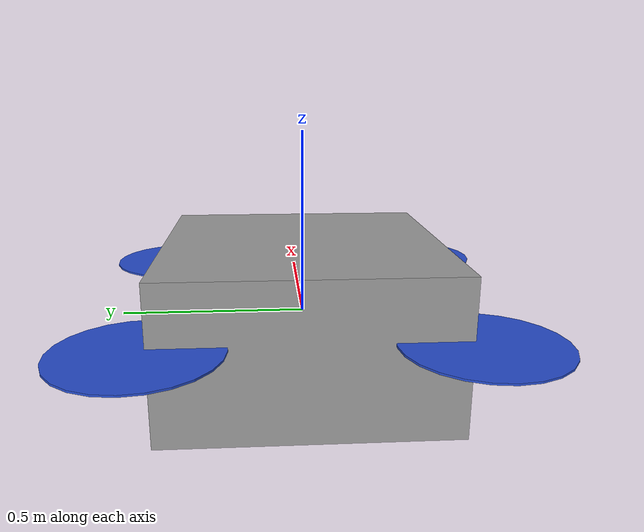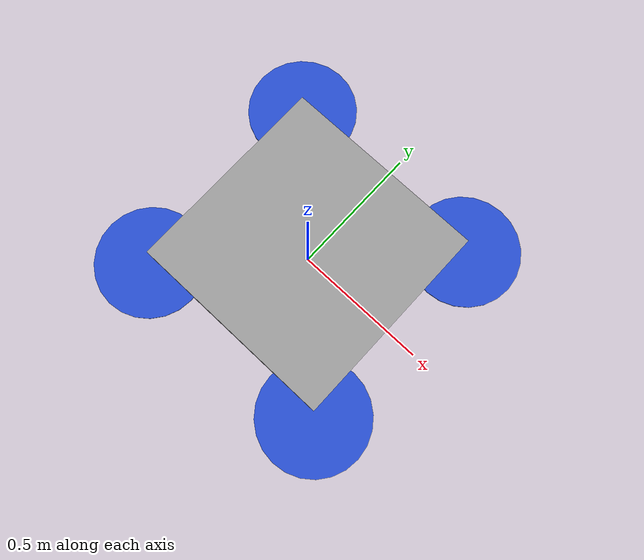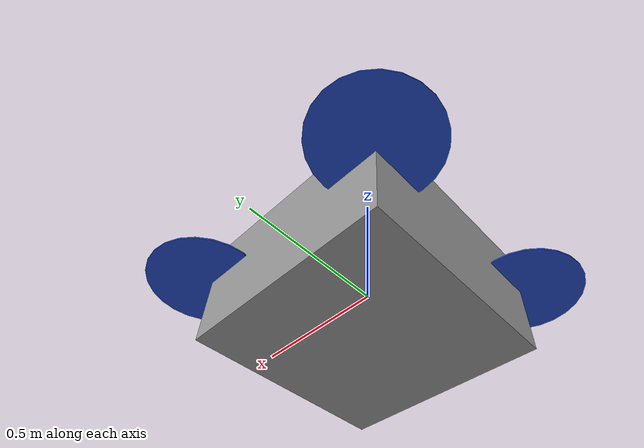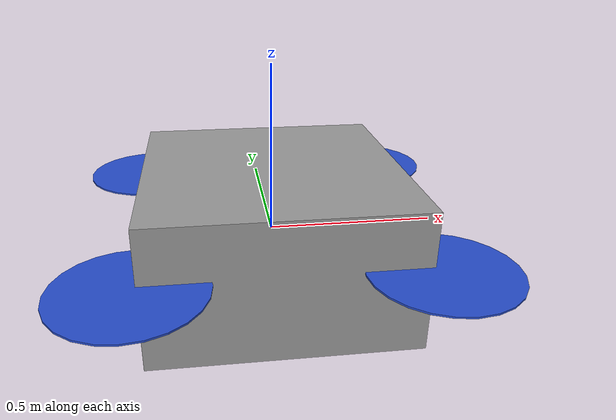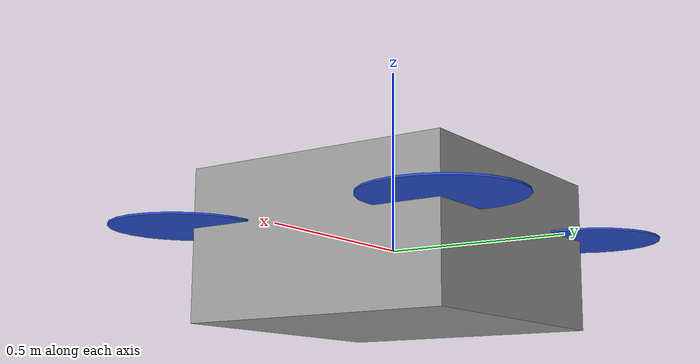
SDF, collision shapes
<?xml version="1.0" ?>

  <sdf version="1.5">
    <model name="tsduav_quad">

      <include>
        <uri>model://tsduav_quad_base</uri>
        <name>tsduav_quad_base</name>
        <pose>0 0 0.0 0 0 0</pose>
      </include>
      <include>
        <uri>model://tsduav_quad_prop</uri>
        <name>tsduav_quad_prop_0</name>
        <pose>0.389 -0.389 0.0465 0 0 0</pose>
      </include>
      <include>
        <uri>model://tsduav_quad_prop</uri>
        <name>tsduav_quad_prop_1</name>
        <pose>-0.389 -0.389 0.0465 0 0 0</pose>
      </include>
      <include>
        <uri>model://tsduav_quad_prop</uri>
        <name>tsduav_quad_prop_2</name>
        <pose>-0.389 0.389 0.0465 0 0 3.141592653589793</pose>
      </include>
      <include>
        <uri>model://tsduav_quad_prop</uri>
        <name>tsduav_quad_prop_3</name>
        <pose>0.389 0.389 0.0465 0 0 3.141592653589793</pose>
      </include>

      <joint name="tsduav_quad_prop_0_joint" type="revolute">
        <parent>tsduav_quad_base::platform_base</parent>
        <child>tsduav_quad_prop_0::prop </child>
        <axis>
          <xyz>0 0 1</xyz>
          <limit>
            <lower>-1e+16</lower>
            <upper>1e+16</upper>
          </limit>
          <dynamics>
            <damping>0.00001</damping>
          </dynamics>
          <use_parent_model_frame>1</use_parent_model_frame>
        </axis>
      </joint>

      <plugin name="tsduav_quad_prop_0_plugin" filename='librotors_gazebo_motor_model.so'>
        <robotNamespace></robotNamespace>
        <jointName>tsduav_quad_prop_0_joint </jointName>
        <linkName>tsduav_quad_prop_0::prop</linkName>
        <turningDirection>ccw</turningDirection>
        <timeConstantUp>0.0125</timeConstantUp>
        <timeConstantDown>0.025</timeConstantDown>
        <maxRotVelocity>1000</maxRotVelocity>
        <motorConstant>8.599e-05</motorConstant>
        <momentConstant>0.25</momentConstant>
        <commandSubTopic>/gazebo/command/prop_speed</commandSubTopic>
        <motorNumber>0</motorNumber>
        <rotorDragCoefficient>0.000806428</rotorDragCoefficient>
        <rollingMomentCoefficient>1e-06</rollingMomentCoefficient>
        <motorSpeedPubTopic>prop_speed/0</motorSpeedPubTopic>
        <rotorVelocitySlowdownSim>10</rotorVelocitySlowdownSim>
      </plugin>

      <joint name="tsduav_quad_prop_1_joint" type="revolute">
        <parent>tsduav_quad_base::platform_base</parent>
        <child>tsduav_quad_prop_1::prop </child>
        <axis>
          <xyz>0 0 1</xyz>
          <limit>
            <lower>-1e+16</lower>
            <upper>1e+16</upper>
          </limit>
          <dynamics>
            <damping>0.00001</damping>
          </dynamics>
          <use_parent_model_frame>1</use_parent_model_frame>
        </axis>
      </joint>

      <plugin name="tsduav_quad_prop_1_plugin" filename='librotors_gazebo_motor_model.so'>
        <robotNamespace></robotNamespace>
        <jointName>tsduav_quad_prop_1_joint </jointName>
        <linkName>tsduav_quad_prop_1::prop</linkName>
        <turningDirection>cw</turningDirection>
        <timeConstantUp>0.0125</timeConstantUp>
        <timeConstantDown>0.025</timeConstantDown>
        <maxRotVelocity>1000</maxRotVelocity>
        <motorConstant>8.599e-05</motorConstant>
        <momentConstant>0.25</momentConstant>
        <commandSubTopic>/gazebo/command/prop_speed</commandSubTopic>
        <motorNumber>1</motorNumber>
        <rotorDragCoefficient>0.000806428</rotorDragCoefficient>
        <rollingMomentCoefficient>1e-06</rollingMomentCoefficient>
        <motorSpeedPubTopic>prop_speed/1</motorSpeedPubTopic>
        <rotorVelocitySlowdownSim>10</rotorVelocitySlowdownSim>
      </plugin>

      <joint name="tsduav_quad_prop_2_joint" type="revolute">
        <parent>tsduav_quad_base::platform_base</parent>
        <child>tsduav_quad_prop_2::prop </child>
        <axis>
          <xyz>0 0 1</xyz>
          <limit>
            <lower>-1e+16</lower>
            <upper>1e+16</upper>
          </limit>
          <dynamics>
            <damping>0.00001</damping>
          </dynamics>
          <use_parent_model_frame>1</use_parent_model_frame>
        </axis>
      </joint>

      <plugin name="tsduav_quad_prop_2_plugin" filename='librotors_gazebo_motor_model.so'>
        <robotNamespace></robotNamespace>
        <jointName>tsduav_quad_prop_2_joint </jointName>
        <linkName>tsduav_quad_prop_2::prop</linkName>
        <turningDirection>ccw</turningDirection>
        <timeConstantUp>0.0125</timeConstantUp>
        <timeConstantDown>0.025</timeConstantDown>
        <maxRotVelocity>1000</maxRotVelocity>
        <motorConstant>8.599e-05</motorConstant>
        <momentConstant>0.25</momentConstant>
        <commandSubTopic>/gazebo/command/prop_speed</commandSubTopic>
        <motorNumber>2</motorNumber>
        <rotorDragCoefficient>0.000806428</rotorDragCoefficient>
        <rollingMomentCoefficient>1e-06</rollingMomentCoefficient>
        <motorSpeedPubTopic>prop_speed/2</motorSpeedPubTopic>
        <rotorVelocitySlowdownSim>10</rotorVelocitySlowdownSim>
      </plugin>

      <joint name="tsduav_quad_prop_3_joint" type="revolute">
        <parent>tsduav_quad_base::platform_base</parent>
        <child>tsduav_quad_prop_3::prop </child>
        <axis>
          <xyz>0 0 1</xyz>
          <limit>
            <lower>-1e+16</lower>
            <upper>1e+16</upper>
          </limit>
          <dynamics>
            <damping>0.00001</damping>
          </dynamics>
          <use_parent_model_frame>1</use_parent_model_frame>
        </axis>
      </joint>

      <plugin name="tsduav_quad_prop_3_plugin" filename='librotors_gazebo_motor_model.so'>
        <robotNamespace></robotNamespace>
        <jointName>tsduav_quad_prop_3_joint </jointName>
        <linkName>tsduav_quad_prop_3::prop</linkName>
        <turningDirection>cw</turningDirection>
        <timeConstantUp>0.0125</timeConstantUp>
        <timeConstantDown>0.025</timeConstantDown>
        <maxRotVelocity>1000</maxRotVelocity>
        <motorConstant>8.599e-05</motorConstant>
        <momentConstant>0.25</momentConstant>
        <commandSubTopic>/gazebo/command/prop_speed</commandSubTopic>
        <motorNumber>3</motorNumber>
        <rotorDragCoefficient>0.000806428</rotorDragCoefficient>
        <rollingMomentCoefficient>1e-06</rollingMomentCoefficient>
        <motorSpeedPubTopic>prop_speed/3</motorSpeedPubTopic>
        <rotorVelocitySlowdownSim>10</rotorVelocitySlowdownSim>
      </plugin>

    <plugin name="ArduRotorNormPlugin" filename="libArduRotorNormPlugin.so">
      <fdm_addr>127.0.0.1</fdm_addr>
      <fdm_port_in>9002</fdm_port_in>
      <fdm_port_out>9003</fdm_port_out>
      <modelXYZToAirplaneXForwardZDown>0 0 0 3.141593 0 0</modelXYZToAirplaneXForwardZDown>
      <gazeboXYZToNED>0 0 0 3.141593 0 0</gazeboXYZToNED>
      <motor_num>4</motor_num>
      <servo_num>0</servo_num>
      <motor_pub>/gazebo/command/prop_speed</motor_pub>
      <imuName>tsduav_quad_base::imu_link::imu_sensor</imuName>
      <connectionTimeoutMaxCount>5</connectionTimeoutMaxCount>
    </plugin>

    <plugin name="ArduUWBPlugin" filename="libArduUWBPlugin.so">
      <ardu_addr>127.0.0.1</ardu_addr>
      <ardu_port>5762</ardu_port>
      <modelXYZToAirplaneXForwardZDown>0 0 0 3.141593 0 0</modelXYZToAirplaneXForwardZDown>
      <gazeboXYZToNED>0 0 0 3.141593 0 0</gazeboXYZToNED>
      <beacon0>0 0 0</beacon0>
      <beacon1>3 0 3</beacon1>
      <beacon2>6 0 0</beacon2>
      <beacon3>6 6 3</beacon3>
      <beacon4>3 6 0</beacon4>
      <beacon5>0 6 3</beacon5>
    </plugin>
  </model>
</sdf>

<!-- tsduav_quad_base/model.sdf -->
<sdf version="1.5">
    <model name="tsduav_quad_platform">

      <link name="platform_base">
      <pose>0 0 0.0  0 0 0</pose>
      <inertial>
        <pose>0 0 0 0 0 0</pose>
        <mass>5.5</mass>
        <inertia>
          <ixx>0.5</ixx>
          <iyy>0.5</iyy>
          <izz>0.2</izz>
          <ixy>0</ixy>
          <ixz>0</ixz>
          <iyz>0</iyz>
        </inertia>
      </inertial>
      <collision name="platform_base_collision">
        <pose>0 0 0  0 0 0</pose>
        <geometry>
          <box>
            <size>0.750 0.750 0.406</size>
          </box>
        </geometry>
        <surface>
          <contact>
            <ode>
              <max_vel>100.0</max_vel>
              <min_depth>0.001</min_depth>
            </ode>
          </contact>
          <friction>
            <ode>
              <mu>100000.0</mu>
              <mu2>100000.0</mu2>
            </ode>
          </friction>
        </surface>
      </collision>
      <visual name="platform_base_visual">
        <geometry>
          <mesh>
            <uri>model://tsduav_quad_base/meshes/body.STL</uri>
          </mesh>
        </geometry>
        <material>
          <script>
            <name>Gazebo/Grey</name>
          </script>
        </material>
      </visual>
    </link>
    <link name='imu_link'>
    <inertial>
      <pose>0 0 0 0 0 0</pose>
      <mass>0.15</mass>
      <inertia>
        <ixx>0.00001</ixx>
        <ixy>0</ixy>
        <ixz>0</ixz>
        <iyy>0.00002</iyy>
        <iyz>0</iyz>
        <izz>0.00002</izz>
      </inertia>
    </inertial>
    <sensor name="imu_sensor" type="imu">
      <pose>0 0 0 3.141593 0 0</pose>
      <always_on>1</always_on>
      <update_rate>1000.0</update_rate>
      <topic>__default_topic__</topic>
    </sensor>
  </link>
  <joint name='imu_joint' type='revolute'>
    <child>imu_link</child>
    <parent>platform_base</parent>
    <axis>
      <xyz>0 0 1</xyz>
      <limit>
        <lower>-0.0001</lower>
        <upper>0.00001</upper>
        <effort>0</effort>
        <velocity>0</velocity>
      </limit>
      <dynamics>
        <damping>1.0</damping>
      </dynamics>
      <use_parent_model_frame>1</use_parent_model_frame>
    </axis>
    <physics>
      <ode>
        <implicit_spring_damper>1</implicit_spring_damper>
      </ode>
    </physics>
  </joint>

</model>
</sdf>

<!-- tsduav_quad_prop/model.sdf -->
<sdf version="1.5">
    <model name="tsduav_quad_prop">
      <link name='prop'>
      <pose>0.0 -0.0 0.0 0 -0 0</pose>
      <inertial>
        <pose>0 0 0 0 -0 0</pose>
        <mass>0.025</mass>
        <inertia>
          <ixx>9.75e-06</ixx>
          <ixy>0</ixy>
          <ixz>0</ixz>
          <iyy>0.000166704</iyy>
          <iyz>0</iyz>
          <izz>0.000167604</izz>
        </inertia>
      </inertial>
      <collision name='rotor_collision'>
        <pose>0 0 0 0 -0 0</pose>
        <geometry>
          <cylinder>
            <length>0.005</length>
            <radius>0.2</radius>
          </cylinder>
        </geometry>
        <surface>
          <contact>
            <ode />
          </contact>
          <friction>
            <ode />
          </friction>
        </surface>
      </collision>
      <visual name='prop_visual'>
        <pose>0 0 0 0 -0 0</pose>
        <geometry>
          <mesh>
            <scale>1 1 1</scale>
            <uri>model://tsduav_quad_prop/meshes/prop.STL</uri>
          </mesh>
        </geometry>
        <material>
          <script>
            <name>Gazebo/Blue</name>
            <uri>__default__</uri>
          </script>
        </material>
      </visual>
      <gravity>1</gravity>
      <velocity_decay />
      <self_collide>0</self_collide>
    </link>
  </model>
</sdf>
